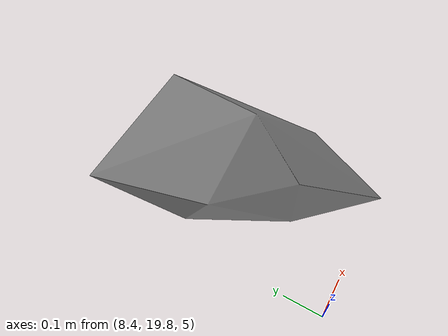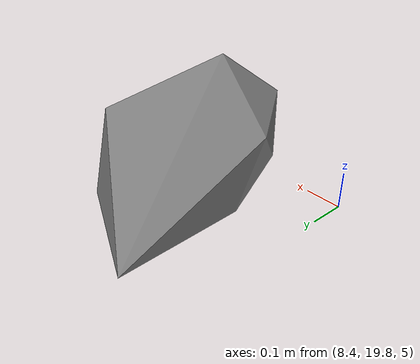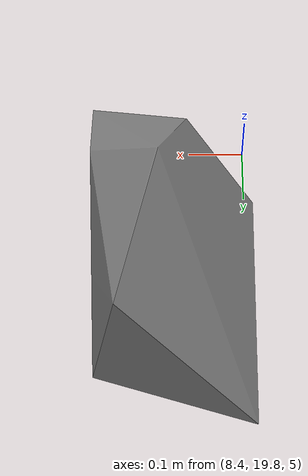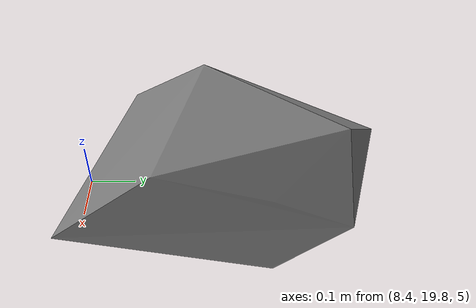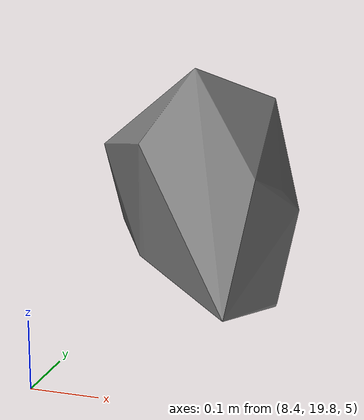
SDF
<sdf version="1.8">
 <model name="blue_mountains">
  <static>true</static>
  <link name="forest_20_22">
   <collision name="plant_473_crown_0">
    <pose>8.677761 20.08138 4.618894 0 0 0</pose>
    <geometry>
     <mesh>
      <uri>model://blue_mountains/meshes/canopy_12_0.dae</uri>
      <scale>0.07575656 0.07575656 0.06926315</scale>
     </mesh>
    </geometry>
   </collision>
   <collision name="plant_473_crown_1">
    <pose>8.677761 20.08138 4.618894 0 0 0</pose>
    <geometry>
     <mesh>
      <uri>model://blue_mountains/meshes/canopy_12_1.dae</uri>
      <scale>0.07575656 0.07575656 0.06926315</scale>
     </mesh>
    </geometry>
   </collision>
   <collision name="plant_480_crown_0">
    <pose>5.153961 22.28396 4.654346 0 0 0</pose>
    <geometry>
     <mesh>
      <uri>model://blue_mountains/meshes/canopy_12_0.dae</uri>
      <scale>0.07575656 0.07575656 0.06926315</scale>
     </mesh>
    </geometry>
   </collision>
   <collision name="plant_480_crown_1">
    <pose>5.153961 22.28396 4.654346 0 0 0</pose>
    <geometry>
     <mesh>
      <uri>model://blue_mountains/meshes/canopy_12_1.dae</uri>
      <scale>0.07575656 0.07575656 0.06926315</scale>
     </mesh>
    </geometry>
   </collision>
   <collision name="plant_483_crown_0">
    <pose>0.6186609 25.23604 4.730132 0 0 0</pose>
    <geometry>
     <mesh>
      <uri>model://blue_mountains/meshes/canopy_16_0.dae</uri>
      <scale>0.07575656 0.07575656 0.06926315</scale>
     </mesh>
    </geometry>
   </collision>
   <collision name="plant_483_crown_1">
    <pose>0.6186609 25.23604 4.730132 0 0 0</pose>
    <geometry>
     <mesh>
      <uri>model://blue_mountains/meshes/canopy_16_1.dae</uri>
      <scale>0.07575656 0.07575656 0.06926315</scale>
     </mesh>
    </geometry>
   </collision>
   <collision name="plant_493_crown_0">
    <pose>6.862761 21.35329 4.730821 0 0 0</pose>
    <geometry>
     <mesh>
      <uri>model://blue_mountains/meshes/canopy_9_0.dae</uri>
      <scale>0.07575656 0.07575656 0.06926315</scale>
     </mesh>
    </geometry>
   </collision>
   <collision name="plant_493_crown_1">
    <pose>6.862761 21.35329 4.730821 0 0 0</pose>
    <geometry>
     <mesh>
      <uri>model://blue_mountains/meshes/canopy_9_1.dae</uri>
      <scale>0.07575656 0.07575656 0.06926315</scale>
     </mesh>
    </geometry>
   </collision>
   <collision name="plant_502_crown_0">
    <pose>0.7462606 24.05902 4.324142 0 0 0</pose>
    <geometry>
     <mesh>
      <uri>model://blue_mountains/meshes/canopy_9_0.dae</uri>
      <scale>0.07575656 0.07575656 0.06926315</scale>
     </mesh>
    </geometry>
   </collision>
   <collision name="plant_502_crown_1">
    <pose>0.7462606 24.05902 4.324142 0 0 0</pose>
    <geometry>
     <mesh>
      <uri>model://blue_mountains/meshes/canopy_9_1.dae</uri>
      <scale>0.07575656 0.07575656 0.06926315</scale>
     </mesh>
    </geometry>
   </collision>
   <collision name="plant_507_crown_0">
    <pose>0.5712376 25.29644 4.743216 0 0 0</pose>
    <geometry>
     <mesh>
      <uri>model://blue_mountains/meshes/canopy_16_0.dae</uri>
      <scale>0.07575656 0.07575656 0.06926315</scale>
     </mesh>
    </geometry>
   </collision>
   <collision name="plant_507_crown_1">
    <pose>0.5712376 25.29644 4.743216 0 0 0</pose>
    <geometry>
     <mesh>
      <uri>model://blue_mountains/meshes/canopy_16_1.dae</uri>
      <scale>0.07575656 0.07575656 0.06926315</scale>
     </mesh>
    </geometry>
   </collision>
   <collision name="plant_522_crown_0">
    <pose>5.081226 21.8291 4.464569 0 0 0</pose>
    <geometry>
     <mesh>
      <uri>model://blue_mountains/meshes/canopy_17_0.dae</uri>
      <scale>0.07575656 0.07575656 0.06926315</scale>
     </mesh>
    </geometry>
   </collision>
   <collision name="plant_522_crown_1">
    <pose>5.081226 21.8291 4.464569 0 0 0</pose>
    <geometry>
     <mesh>
      <uri>model://blue_mountains/meshes/canopy_17_1.dae</uri>
      <scale>0.07575656 0.07575656 0.06926315</scale>
     </mesh>
    </geometry>
   </collision>
   <collision name="plant_530_crown_0">
    <pose>1.198085 25.64903 26.77705 0 0 2.047998</pose>
    <geometry>
     <mesh>
      <uri>model://blue_mountains/meshes/canopy_9_0.dae</uri>
      <scale>0.05570151 0.05570151 0.04010509</scale>
     </mesh>
    </geometry>
   </collision>
   <collision name="plant_530_crown_1">
    <pose>1.198085 25.64903 26.77705 0 0 2.047998</pose>
    <geometry>
     <mesh>
      <uri>model://blue_mountains/meshes/canopy_9_1.dae</uri>
      <scale>0.05570151 0.05570151 0.04010509</scale>
     </mesh>
    </geometry>
   </collision>
   <collision name="plant_531_crown_0">
    <pose>1.044952 24.8511 26.77705 0 0 1.608684</pose>
    <geometry>
     <mesh>
      <uri>model://blue_mountains/meshes/canopy_10_0.dae</uri>
      <scale>0.05567531 0.05567531 0.04008622</scale>
     </mesh>
    </geometry>
   </collision>
   <collision name="plant_531_crown_1">
    <pose>1.044952 24.8511 26.77705 0 0 1.608684</pose>
    <geometry>
     <mesh>
      <uri>model://blue_mountains/meshes/canopy_10_1.dae</uri>
      <scale>0.05567531 0.05567531 0.04008622</scale>
     </mesh>
    </geometry>
   </collision>
   <collision name="plant_532_crown_0">
    <pose>3.755941 23.99877 26.77705 0 0 2.079899</pose>
    <geometry>
     <mesh>
      <uri>model://blue_mountains/meshes/canopy_11_0.dae</uri>
      <scale>0.03209214 0.03209214 0.02310634</scale>
     </mesh>
    </geometry>
   </collision>
   <collision name="plant_532_crown_1">
    <pose>3.755941 23.99877 26.77705 0 0 2.079899</pose>
    <geometry>
     <mesh>
      <uri>model://blue_mountains/meshes/canopy_11_1.dae</uri>
      <scale>0.03209214 0.03209214 0.02310634</scale>
     </mesh>
    </geometry>
   </collision>
   <collision name="plant_533_crown_0">
    <pose>3.64604 25.17569 26.77705 0 0 -0.05939228</pose>
    <geometry>
     <mesh>
      <uri>model://blue_mountains/meshes/canopy_12_0.dae</uri>
      <scale>0.06605312 0.06605312 0.04755824</scale>
     </mesh>
    </geometry>
   </collision>
   <collision name="plant_533_crown_1">
    <pose>3.64604 25.17569 26.77705 0 0 -0.05939228</pose>
    <geometry>
     <mesh>
      <uri>model://blue_mountains/meshes/canopy_12_1.dae</uri>
      <scale>0.06605312 0.06605312 0.04755824</scale>
     </mesh>
    </geometry>
   </collision>
   <collision name="plant_534_crown_0">
    <pose>3.41852 24.96568 26.77705 0 0 -0.2101829</pose>
    <geometry>
     <mesh>
      <uri>model://blue_mountains/meshes/canopy_13_0.dae</uri>
      <scale>0.03858489 0.03858489 0.02778112</scale>
     </mesh>
    </geometry>
   </collision>
   <collision name="plant_534_crown_1">
    <pose>3.41852 24.96568 26.77705 0 0 -0.2101829</pose>
    <geometry>
     <mesh>
      <uri>model://blue_mountains/meshes/canopy_13_1.dae</uri>
      <scale>0.03858489 0.03858489 0.02778112</scale>
     </mesh>
    </geometry>
   </collision>
   <collision name="plant_535_crown_0">
    <pose>1.892339 23.65535 26.77705 0 0 1.235786</pose>
    <geometry>
     <mesh>
      <uri>model://blue_mountains/meshes/canopy_14_0.dae</uri>
      <scale>0.05013996 0.05013996 0.03610077</scale>
     </mesh>
    </geometry>
   </collision>
   <collision name="plant_535_crown_1">
    <pose>1.892339 23.65535 26.77705 0 0 1.235786</pose>
    <geometry>
     <mesh>
      <uri>model://blue_mountains/meshes/canopy_14_1.dae</uri>
      <scale>0.05013996 0.05013996 0.03610077</scale>
     </mesh>
    </geometry>
   </collision>
   <collision name="plant_536_crown_0">
    <pose>2.340251 26.52953 26.77705 0 0 -1.296142</pose>
    <geometry>
     <mesh>
      <uri>model://blue_mountains/meshes/canopy_16_0.dae</uri>
      <scale>0.04668742 0.04668742 0.03361494</scale>
     </mesh>
    </geometry>
   </collision>
   <collision name="plant_536_crown_1">
    <pose>2.340251 26.52953 26.77705 0 0 -1.296142</pose>
    <geometry>
     <mesh>
      <uri>model://blue_mountains/meshes/canopy_16_1.dae</uri>
      <scale>0.04668742 0.04668742 0.03361494</scale>
     </mesh>
    </geometry>
   </collision>
   <collision name="plant_537_crown_0">
    <pose>2.623847 25.23013 26.77705 0 0 -1.394095</pose>
    <geometry>
     <mesh>
      <uri>model://blue_mountains/meshes/canopy_17_0.dae</uri>
      <scale>0.03877625 0.03877625 0.0279189</scale>
     </mesh>
    </geometry>
   </collision>
   <collision name="plant_537_crown_1">
    <pose>2.623847 25.23013 26.77705 0 0 -1.394095</pose>
    <geometry>
     <mesh>
      <uri>model://blue_mountains/meshes/canopy_17_1.dae</uri>
      <scale>0.03877625 0.03877625 0.0279189</scale>
     </mesh>
    </geometry>
   </collision>
   <collision name="plant_538_crown_0">
    <pose>2.767093 23.875 26.77705 0 0 -2.401805</pose>
    <geometry>
     <mesh>
      <uri>model://blue_mountains/meshes/canopy_15_0.dae</uri>
      <scale>0.04078904 0.04078904 0.02936811</scale>
     </mesh>
    </geometry>
   </collision>
   <collision name="plant_538_crown_1">
    <pose>2.767093 23.875 26.77705 0 0 -2.401805</pose>
    <geometry>
     <mesh>
      <uri>model://blue_mountains/meshes/canopy_15_1.dae</uri>
      <scale>0.04078904 0.04078904 0.02936811</scale>
     </mesh>
    </geometry>
   </collision>
   <collision name="plant_539_crown_0">
    <pose>3.784349 25.03315 26.77705 0 0 -0.4079178</pose>
    <geometry>
     <mesh>
      <uri>model://blue_mountains/meshes/canopy_9_0.dae</uri>
      <scale>0.03891067 0.03891067 0.02801568</scale>
     </mesh>
    </geometry>
   </collision>
   <collision name="plant_539_crown_1">
    <pose>3.784349 25.03315 26.77705 0 0 -0.4079178</pose>
    <geometry>
     <mesh>
      <uri>model://blue_mountains/meshes/canopy_9_1.dae</uri>
      <scale>0.03891067 0.03891067 0.02801568</scale>
     </mesh>
    </geometry>
   </collision>
   <collision name="plant_540_crown_0">
    <pose>2.105189 25.4656 26.77705 0 0 1.887536</pose>
    <geometry>
     <mesh>
      <uri>model://blue_mountains/meshes/canopy_10_0.dae</uri>
      <scale>0.04342087 0.04342087 0.03126303</scale>
     </mesh>
    </geometry>
   </collision>
   <collision name="plant_540_crown_1">
    <pose>2.105189 25.4656 26.77705 0 0 1.887536</pose>
    <geometry>
     <mesh>
      <uri>model://blue_mountains/meshes/canopy_10_1.dae</uri>
      <scale>0.04342087 0.04342087 0.03126303</scale>
     </mesh>
    </geometry>
   </collision>
   <collision name="plant_541_crown_0">
    <pose>0.2119408 22.88078 26.77705 0 0 -1.263834</pose>
    <geometry>
     <mesh>
      <uri>model://blue_mountains/meshes/canopy_11_0.dae</uri>
      <scale>0.03830105 0.03830105 0.02757676</scale>
     </mesh>
    </geometry>
   </collision>
   <collision name="plant_541_crown_1">
    <pose>0.2119408 22.88078 26.77705 0 0 -1.263834</pose>
    <geometry>
     <mesh>
      <uri>model://blue_mountains/meshes/canopy_11_1.dae</uri>
      <scale>0.03830105 0.03830105 0.02757676</scale>
     </mesh>
    </geometry>
   </collision>
   <collision name="plant_542_crown_0">
    <pose>3.176075 23.94971 26.77705 0 0 -2.032307</pose>
    <geometry>
     <mesh>
      <uri>model://blue_mountains/meshes/canopy_12_0.dae</uri>
      <scale>0.03841555 0.03841555 0.02765919</scale>
     </mesh>
    </geometry>
   </collision>
   <collision name="plant_542_crown_1">
    <pose>3.176075 23.94971 26.77705 0 0 -2.032307</pose>
    <geometry>
     <mesh>
      <uri>model://blue_mountains/meshes/canopy_12_1.dae</uri>
      <scale>0.03841555 0.03841555 0.02765919</scale>
     </mesh>
    </geometry>
   </collision>
   <collision name="plant_543_crown_0">
    <pose>2.067636 25.33515 26.77705 0 0 0.7596634</pose>
    <geometry>
     <mesh>
      <uri>model://blue_mountains/meshes/canopy_13_0.dae</uri>
      <scale>0.06016881 0.06016881 0.04332155</scale>
     </mesh>
    </geometry>
   </collision>
   <collision name="plant_543_crown_1">
    <pose>2.067636 25.33515 26.77705 0 0 0.7596634</pose>
    <geometry>
     <mesh>
      <uri>model://blue_mountains/meshes/canopy_13_1.dae</uri>
      <scale>0.06016881 0.06016881 0.04332155</scale>
     </mesh>
    </geometry>
   </collision>
   <collision name="plant_544_crown_0">
    <pose>3.292474 23.40518 26.77705 0 0 -2.64013</pose>
    <geometry>
     <mesh>
      <uri>model://blue_mountains/meshes/canopy_14_0.dae</uri>
      <scale>0.03662495 0.03662495 0.02636996</scale>
     </mesh>
    </geometry>
   </collision>
   <collision name="plant_544_crown_1">
    <pose>3.292474 23.40518 26.77705 0 0 -2.64013</pose>
    <geometry>
     <mesh>
      <uri>model://blue_mountains/meshes/canopy_14_1.dae</uri>
      <scale>0.03662495 0.03662495 0.02636996</scale>
     </mesh>
    </geometry>
   </collision>
   <collision name="plant_545_crown_0">
    <pose>2.259783 26.05717 26.77705 0 0 -2.490295</pose>
    <geometry>
     <mesh>
      <uri>model://blue_mountains/meshes/canopy_16_0.dae</uri>
      <scale>0.04453435 0.04453435 0.03206473</scale>
     </mesh>
    </geometry>
   </collision>
   <collision name="plant_545_crown_1">
    <pose>2.259783 26.05717 26.77705 0 0 -2.490295</pose>
    <geometry>
     <mesh>
      <uri>model://blue_mountains/meshes/canopy_16_1.dae</uri>
      <scale>0.04453435 0.04453435 0.03206473</scale>
     </mesh>
    </geometry>
   </collision>
   <collision name="plant_546_crown_0">
    <pose>2.919366 24.4645 26.77705 0 0 -2.809561</pose>
    <geometry>
     <mesh>
      <uri>model://blue_mountains/meshes/canopy_17_0.dae</uri>
      <scale>0.03103218 0.03103218 0.02234317</scale>
     </mesh>
    </geometry>
   </collision>
   <collision name="plant_546_crown_1">
    <pose>2.919366 24.4645 26.77705 0 0 -2.809561</pose>
    <geometry>
     <mesh>
      <uri>model://blue_mountains/meshes/canopy_17_1.dae</uri>
      <scale>0.03103218 0.03103218 0.02234317</scale>
     </mesh>
    </geometry>
   </collision>
   <collision name="plant_547_crown_0">
    <pose>0.2766027 22.92285 26.77705 0 0 -1.40135</pose>
    <geometry>
     <mesh>
      <uri>model://blue_mountains/meshes/canopy_15_0.dae</uri>
      <scale>0.04896622 0.04896622 0.03525568</scale>
     </mesh>
    </geometry>
   </collision>
   <collision name="plant_547_crown_1">
    <pose>0.2766027 22.92285 26.77705 0 0 -1.40135</pose>
    <geometry>
     <mesh>
      <uri>model://blue_mountains/meshes/canopy_15_1.dae</uri>
      <scale>0.04896622 0.04896622 0.03525568</scale>
     </mesh>
    </geometry>
   </collision>
   <collision name="plant_548_crown_0">
    <pose>1.425838 26.47417 26.77705 0 0 2.083898</pose>
    <geometry>
     <mesh>
      <uri>model://blue_mountains/meshes/canopy_9_0.dae</uri>
      <scale>0.05690488 0.05690488 0.04097151</scale>
     </mesh>
    </geometry>
   </collision>
   <collision name="plant_548_crown_1">
    <pose>1.425838 26.47417 26.77705 0 0 2.083898</pose>
    <geometry>
     <mesh>
      <uri>model://blue_mountains/meshes/canopy_9_1.dae</uri>
      <scale>0.05690488 0.05690488 0.04097151</scale>
     </mesh>
    </geometry>
   </collision>
   <collision name="plant_549_crown_0">
    <pose>2.022517 25.58707 26.77705 0 0 -1.503879</pose>
    <geometry>
     <mesh>
      <uri>model://blue_mountains/meshes/canopy_10_0.dae</uri>
      <scale>0.04376206 0.04376206 0.03150868</scale>
     </mesh>
    </geometry>
   </collision>
   <collision name="plant_549_crown_1">
    <pose>2.022517 25.58707 26.77705 0 0 -1.503879</pose>
    <geometry>
     <mesh>
      <uri>model://blue_mountains/meshes/canopy_10_1.dae</uri>
      <scale>0.04376206 0.04376206 0.03150868</scale>
     </mesh>
    </geometry>
   </collision>
   <collision name="plant_550_crown_0">
    <pose>0.1847324 25.54053 26.77705 0 0 -1.725963</pose>
    <geometry>
     <mesh>
      <uri>model://blue_mountains/meshes/canopy_11_0.dae</uri>
      <scale>0.0495435 0.0495435 0.03567132</scale>
     </mesh>
    </geometry>
   </collision>
   <collision name="plant_550_crown_1">
    <pose>0.1847324 25.54053 26.77705 0 0 -1.725963</pose>
    <geometry>
     <mesh>
      <uri>model://blue_mountains/meshes/canopy_11_1.dae</uri>
      <scale>0.0495435 0.0495435 0.03567132</scale>
     </mesh>
    </geometry>
   </collision>
   <collision name="plant_551_crown_0">
    <pose>0.8605232 24.89202 26.77705 0 0 -3.124573</pose>
    <geometry>
     <mesh>
      <uri>model://blue_mountains/meshes/canopy_12_0.dae</uri>
      <scale>0.06674428 0.06674428 0.04805588</scale>
     </mesh>
    </geometry>
   </collision>
   <collision name="plant_551_crown_1">
    <pose>0.8605232 24.89202 26.77705 0 0 -3.124573</pose>
    <geometry>
     <mesh>
      <uri>model://blue_mountains/meshes/canopy_12_1.dae</uri>
      <scale>0.06674428 0.06674428 0.04805588</scale>
     </mesh>
    </geometry>
   </collision>
   <collision name="plant_552_crown_0">
    <pose>1.131092 26.21499 26.77705 0 0 -1.063129</pose>
    <geometry>
     <mesh>
      <uri>model://blue_mountains/meshes/canopy_13_0.dae</uri>
      <scale>0.05597425 0.05597425 0.04030146</scale>
     </mesh>
    </geometry>
   </collision>
   <collision name="plant_552_crown_1">
    <pose>1.131092 26.21499 26.77705 0 0 -1.063129</pose>
    <geometry>
     <mesh>
      <uri>model://blue_mountains/meshes/canopy_13_1.dae</uri>
      <scale>0.05597425 0.05597425 0.04030146</scale>
     </mesh>
    </geometry>
   </collision>
   <collision name="plant_553_crown_0">
    <pose>0.5346384 24.61217 26.77705 0 0 1.893352</pose>
    <geometry>
     <mesh>
      <uri>model://blue_mountains/meshes/canopy_14_0.dae</uri>
      <scale>0.05109373 0.05109373 0.03678748</scale>
     </mesh>
    </geometry>
   </collision>
   <collision name="plant_553_crown_1">
    <pose>0.5346384 24.61217 26.77705 0 0 1.893352</pose>
    <geometry>
     <mesh>
      <uri>model://blue_mountains/meshes/canopy_14_1.dae</uri>
      <scale>0.05109373 0.05109373 0.03678748</scale>
     </mesh>
    </geometry>
   </collision>
   <collision name="plant_554_crown_0">
    <pose>3.155102 25.87243 26.77705 0 0 2.427433</pose>
    <geometry>
     <mesh>
      <uri>model://blue_mountains/meshes/canopy_16_0.dae</uri>
      <scale>0.03640895 0.03640895 0.02621444</scale>
     </mesh>
    </geometry>
   </collision>
   <collision name="plant_554_crown_1">
    <pose>3.155102 25.87243 26.77705 0 0 2.427433</pose>
    <geometry>
     <mesh>
      <uri>model://blue_mountains/meshes/canopy_16_1.dae</uri>
      <scale>0.03640895 0.03640895 0.02621444</scale>
     </mesh>
    </geometry>
   </collision>
   <collision name="plant_555_crown_0">
    <pose>0.1452732 23.05852 26.77705 0 0 1.617626</pose>
    <geometry>
     <mesh>
      <uri>model://blue_mountains/meshes/canopy_17_0.dae</uri>
      <scale>0.05587987 0.05587987 0.04023351</scale>
     </mesh>
    </geometry>
   </collision>
   <collision name="plant_555_crown_1">
    <pose>0.1452732 23.05852 26.77705 0 0 1.617626</pose>
    <geometry>
     <mesh>
      <uri>model://blue_mountains/meshes/canopy_17_1.dae</uri>
      <scale>0.05587987 0.05587987 0.04023351</scale>
     </mesh>
    </geometry>
   </collision>
   <collision name="plant_556_crown_0">
    <pose>3.697051 25.70386 26.77705 0 0 -1.943493</pose>
    <geometry>
     <mesh>
      <uri>model://blue_mountains/meshes/canopy_15_0.dae</uri>
      <scale>0.05215465 0.05215465 0.03755135</scale>
     </mesh>
    </geometry>
   </collision>
   <collision name="plant_556_crown_1">
    <pose>3.697051 25.70386 26.77705 0 0 -1.943493</pose>
    <geometry>
     <mesh>
      <uri>model://blue_mountains/meshes/canopy_15_1.dae</uri>
      <scale>0.05215465 0.05215465 0.03755135</scale>
     </mesh>
    </geometry>
   </collision>
   <collision name="plant_557_crown_0">
    <pose>0.7544641 23.90619 26.77705 0 0 0.5056376</pose>
    <geometry>
     <mesh>
      <uri>model://blue_mountains/meshes/canopy_9_0.dae</uri>
      <scale>0.04095233 0.04095233 0.02948568</scale>
     </mesh>
    </geometry>
   </collision>
   <collision name="plant_557_crown_1">
    <pose>0.7544641 23.90619 26.77705 0 0 0.5056376</pose>
    <geometry>
     <mesh>
      <uri>model://blue_mountains/meshes/canopy_9_1.dae</uri>
      <scale>0.04095233 0.04095233 0.02948568</scale>
     </mesh>
    </geometry>
   </collision>
   <collision name="plant_558_crown_0">
    <pose>1.955627 25.25524 26.77705 0 0 -0.7298977</pose>
    <geometry>
     <mesh>
      <uri>model://blue_mountains/meshes/canopy_10_0.dae</uri>
      <scale>0.0503149 0.0503149 0.03622673</scale>
     </mesh>
    </geometry>
   </collision>
   <collision name="plant_558_crown_1">
    <pose>1.955627 25.25524 26.77705 0 0 -0.7298977</pose>
    <geometry>
     <mesh>
      <uri>model://blue_mountains/meshes/canopy_10_1.dae</uri>
      <scale>0.0503149 0.0503149 0.03622673</scale>
     </mesh>
    </geometry>
   </collision>
   <collision name="plant_559_crown_0">
    <pose>3.343706 25.23955 26.77705 0 0 -2.631783</pose>
    <geometry>
     <mesh>
      <uri>model://blue_mountains/meshes/canopy_11_0.dae</uri>
      <scale>0.0323243 0.0323243 0.02327349</scale>
     </mesh>
    </geometry>
   </collision>
   <collision name="plant_559_crown_1">
    <pose>3.343706 25.23955 26.77705 0 0 -2.631783</pose>
    <geometry>
     <mesh>
      <uri>model://blue_mountains/meshes/canopy_11_1.dae</uri>
      <scale>0.0323243 0.0323243 0.02327349</scale>
     </mesh>
    </geometry>
   </collision>
   <collision name="plant_560_crown_0">
    <pose>1.46683 23.65966 26.77705 0 0 -0.8614276</pose>
    <geometry>
     <mesh>
      <uri>model://blue_mountains/meshes/canopy_12_0.dae</uri>
      <scale>0.05493695 0.05493695 0.03955461</scale>
     </mesh>
    </geometry>
   </collision>
   <collision name="plant_560_crown_1">
    <pose>1.46683 23.65966 26.77705 0 0 -0.8614276</pose>
    <geometry>
     <mesh>
      <uri>model://blue_mountains/meshes/canopy_12_1.dae</uri>
      <scale>0.05493695 0.05493695 0.03955461</scale>
     </mesh>
    </geometry>
   </collision>
   <collision name="plant_561_crown_0">
    <pose>1.223083 24.78657 26.77705 0 0 0.5088393</pose>
    <geometry>
     <mesh>
      <uri>model://blue_mountains/meshes/canopy_13_0.dae</uri>
      <scale>0.06677686 0.06677686 0.04807934</scale>
     </mesh>
    </geometry>
   </collision>
   <collision name="plant_561_crown_1">
    <pose>1.223083 24.78657 26.77705 0 0 0.5088393</pose>
    <geometry>
     <mesh>
      <uri>model://blue_mountains/meshes/canopy_13_1.dae</uri>
      <scale>0.06677686 0.06677686 0.04807934</scale>
     </mesh>
    </geometry>
   </collision>
   <collision name="plant_562_crown_0">
    <pose>0.4813452 26.27377 26.77705 0 0 -0.783541</pose>
    <geometry>
     <mesh>
      <uri>model://blue_mountains/meshes/canopy_14_0.dae</uri>
      <scale>0.06227544 0.06227544 0.04483831</scale>
     </mesh>
    </geometry>
   </collision>
   <collision name="plant_562_crown_1">
    <pose>0.4813452 26.27377 26.77705 0 0 -0.783541</pose>
    <geometry>
     <mesh>
      <uri>model://blue_mountains/meshes/canopy_14_1.dae</uri>
      <scale>0.06227544 0.06227544 0.04483831</scale>
     </mesh>
    </geometry>
   </collision>
   <collision name="plant_563_crown_0">
    <pose>1.096311 25.85804 26.77705 0 0 -2.159941</pose>
    <geometry>
     <mesh>
      <uri>model://blue_mountains/meshes/canopy_16_0.dae</uri>
      <scale>0.04505201 0.04505201 0.03243745</scale>
     </mesh>
    </geometry>
   </collision>
   <collision name="plant_563_crown_1">
    <pose>1.096311 25.85804 26.77705 0 0 -2.159941</pose>
    <geometry>
     <mesh>
      <uri>model://blue_mountains/meshes/canopy_16_1.dae</uri>
      <scale>0.04505201 0.04505201 0.03243745</scale>
     </mesh>
    </geometry>
   </collision>
   <collision name="plant_564_crown_0">
    <pose>2.931278 23.48528 26.77705 0 0 0.07563229</pose>
    <geometry>
     <mesh>
      <uri>model://blue_mountains/meshes/canopy_17_0.dae</uri>
      <scale>0.04803754 0.04803754 0.03458703</scale>
     </mesh>
    </geometry>
   </collision>
   <collision name="plant_564_crown_1">
    <pose>2.931278 23.48528 26.77705 0 0 0.07563229</pose>
    <geometry>
     <mesh>
      <uri>model://blue_mountains/meshes/canopy_17_1.dae</uri>
      <scale>0.04803754 0.04803754 0.03458703</scale>
     </mesh>
    </geometry>
   </collision>
   <collision name="plant_567_crown_0">
    <pose>5.218371 20.70687 15.95469 0 0 -1.873321</pose>
    <geometry>
     <mesh>
      <uri>model://blue_mountains/meshes/canopy_10_0.dae</uri>
      <scale>0.04852451 0.04852451 0.03493765</scale>
     </mesh>
    </geometry>
   </collision>
   <collision name="plant_567_crown_1">
    <pose>5.218371 20.70687 15.95469 0 0 -1.873321</pose>
    <geometry>
     <mesh>
      <uri>model://blue_mountains/meshes/canopy_10_1.dae</uri>
      <scale>0.04852451 0.04852451 0.03493765</scale>
     </mesh>
    </geometry>
   </collision>
   <collision name="plant_568_crown_0">
    <pose>6.383032 24.1776 23.74679 0 0 0.04615553</pose>
    <geometry>
     <mesh>
      <uri>model://blue_mountains/meshes/canopy_11_0.dae</uri>
      <scale>0.03527452 0.03527452 0.02539765</scale>
     </mesh>
    </geometry>
   </collision>
   <collision name="plant_568_crown_1">
    <pose>6.383032 24.1776 23.74679 0 0 0.04615553</pose>
    <geometry>
     <mesh>
      <uri>model://blue_mountains/meshes/canopy_11_1.dae</uri>
      <scale>0.03527452 0.03527452 0.02539765</scale>
     </mesh>
    </geometry>
   </collision>
   <collision name="plant_569_crown_0">
    <pose>6.789952 23.7512 18.7685 0 0 1.149171</pose>
    <geometry>
     <mesh>
      <uri>model://blue_mountains/meshes/canopy_12_0.dae</uri>
      <scale>0.03927777 0.03927777 0.02828</scale>
     </mesh>
    </geometry>
   </collision>
   <collision name="plant_569_crown_1">
    <pose>6.789952 23.7512 18.7685 0 0 1.149171</pose>
    <geometry>
     <mesh>
      <uri>model://blue_mountains/meshes/canopy_12_1.dae</uri>
      <scale>0.03927777 0.03927777 0.02828</scale>
     </mesh>
    </geometry>
   </collision>
   <collision name="plant_570_crown_0">
    <pose>3.919687 20.70687 21.58232 0 0 -0.4937628</pose>
    <geometry>
     <mesh>
      <uri>model://blue_mountains/meshes/canopy_13_0.dae</uri>
      <scale>0.05242193 0.05242193 0.03774379</scale>
     </mesh>
    </geometry>
   </collision>
   <collision name="plant_570_crown_1">
    <pose>3.919687 20.70687 21.58232 0 0 -0.4937628</pose>
    <geometry>
     <mesh>
      <uri>model://blue_mountains/meshes/canopy_13_1.dae</uri>
      <scale>0.05242193 0.05242193 0.03774379</scale>
     </mesh>
    </geometry>
   </collision>
   <collision name="plant_571_crown_0">
    <pose>3.896788 21.49019 22.4481 0 0 -1.841495</pose>
    <geometry>
     <mesh>
      <uri>model://blue_mountains/meshes/canopy_14_0.dae</uri>
      <scale>0.05193698 0.05193698 0.03739463</scale>
     </mesh>
    </geometry>
   </collision>
   <collision name="plant_571_crown_1">
    <pose>3.896788 21.49019 22.4481 0 0 -1.841495</pose>
    <geometry>
     <mesh>
      <uri>model://blue_mountains/meshes/canopy_14_1.dae</uri>
      <scale>0.05193698 0.05193698 0.03739463</scale>
     </mesh>
    </geometry>
   </collision>
   <collision name="plant_573_crown_0">
    <pose>6.370045 24.13561 22.4481 0 0 -1.214486</pose>
    <geometry>
     <mesh>
      <uri>model://blue_mountains/meshes/canopy_17_0.dae</uri>
      <scale>0.05079237 0.05079237 0.03657051</scale>
     </mesh>
    </geometry>
   </collision>
   <collision name="plant_573_crown_1">
    <pose>6.370045 24.13561 22.4481 0 0 -1.214486</pose>
    <geometry>
     <mesh>
      <uri>model://blue_mountains/meshes/canopy_17_1.dae</uri>
      <scale>0.05079237 0.05079237 0.03657051</scale>
     </mesh>
    </geometry>
   </collision>
   <collision name="plant_574_crown_0">
    <pose>4.144533 29.29398 18.7685 0 0 -1.483319</pose>
    <geometry>
     <mesh>
      <uri>model://blue_mountains/meshes/canopy_15_0.dae</uri>
      <scale>0.03868147 0.03868147 0.02785066</scale>
     </mesh>
    </geometry>
   </collision>
   <collision name="plant_574_crown_1">
    <pose>4.144533 29.29398 18.7685 0 0 -1.483319</pose>
    <geometry>
     <mesh>
      <uri>model://blue_mountains/meshes/canopy_15_1.dae</uri>
      <scale>0.03868147 0.03868147 0.02785066</scale>
     </mesh>
    </geometry>
   </collision>
   <collision name="plant_575_crown_0">
    <pose>7.019386 23.83518 17.90271 0 0 -1.993925</pose>
    <geometry>
     <mesh>
      <uri>model://blue_mountains/meshes/canopy_9_0.dae</uri>
      <scale>0.06683843 0.06683843 0.04812367</scale>
     </mesh>
    </geometry>
   </collision>
   <collision name="plant_575_crown_1">
    <pose>7.019386 23.83518 17.90271 0 0 -1.993925</pose>
    <geometry>
     <mesh>
      <uri>model://blue_mountains/meshes/canopy_9_1.dae</uri>
      <scale>0.06683843 0.06683843 0.04812367</scale>
     </mesh>
    </geometry>
   </collision>
   <collision name="plant_576_crown_0">
    <pose>4.056353 20.51791 18.7685 0 0 -2.781163</pose>
    <geometry>
     <mesh>
      <uri>model://blue_mountains/meshes/canopy_10_0.dae</uri>
      <scale>0.04874476 0.04874476 0.03509622</scale>
     </mesh>
    </geometry>
   </collision>
   <collision name="plant_576_crown_1">
    <pose>4.056353 20.51791 18.7685 0 0 -2.781163</pose>
    <geometry>
     <mesh>
      <uri>model://blue_mountains/meshes/canopy_10_1.dae</uri>
      <scale>0.04874476 0.04874476 0.03509622</scale>
     </mesh>
    </geometry>
   </collision>
   <collision name="plant_578_crown_0">
    <pose>1.719566 20.05601 18.7685 0 0 -0.5409574</pose>
    <geometry>
     <mesh>
      <uri>model://blue_mountains/meshes/canopy_12_0.dae</uri>
      <scale>0.05601997 0.05601997 0.04033438</scale>
     </mesh>
    </geometry>
   </collision>
   <collision name="plant_578_crown_1">
    <pose>1.719566 20.05601 18.7685 0 0 -0.5409574</pose>
    <geometry>
     <mesh>
      <uri>model://blue_mountains/meshes/canopy_12_1.dae</uri>
      <scale>0.05601997 0.05601997 0.04033438</scale>
     </mesh>
    </geometry>
   </collision>
   <collision name="plant_580_crown_0">
    <pose>5.669188 22.40749 26.12771 0 0 0.5031929</pose>
    <geometry>
     <mesh>
      <uri>model://blue_mountains/meshes/canopy_14_0.dae</uri>
      <scale>0.0389599 0.0389599 0.02805113</scale>
     </mesh>
    </geometry>
   </collision>
   <collision name="plant_580_crown_1">
    <pose>5.669188 22.40749 26.12771 0 0 0.5031929</pose>
    <geometry>
     <mesh>
      <uri>model://blue_mountains/meshes/canopy_14_1.dae</uri>
      <scale>0.0389599 0.0389599 0.02805113</scale>
     </mesh>
    </geometry>
   </collision>
   <collision name="plant_581_crown_0">
    <pose>4.012067 29.08403 21.58232 0 0 1.714038</pose>
    <geometry>
     <mesh>
      <uri>model://blue_mountains/meshes/canopy_16_0.dae</uri>
      <scale>0.05843258 0.05843258 0.04207146</scale>
     </mesh>
    </geometry>
   </collision>
   <collision name="plant_581_crown_1">
    <pose>4.012067 29.08403 21.58232 0 0 1.714038</pose>
    <geometry>
     <mesh>
      <uri>model://blue_mountains/meshes/canopy_16_1.dae</uri>
      <scale>0.05843258 0.05843258 0.04207146</scale>
     </mesh>
    </geometry>
   </collision>
   <collision name="plant_582_crown_0">
    <pose>5.771676 22.17044 22.4481 0 0 -0.3749612</pose>
    <geometry>
     <mesh>
      <uri>model://blue_mountains/meshes/canopy_17_0.dae</uri>
      <scale>0.06881279 0.06881279 0.0495452</scale>
     </mesh>
    </geometry>
   </collision>
   <collision name="plant_582_crown_1">
    <pose>5.771676 22.17044 22.4481 0 0 -0.3749612</pose>
    <geometry>
     <mesh>
      <uri>model://blue_mountains/meshes/canopy_17_1.dae</uri>
      <scale>0.06881279 0.06881279 0.0495452</scale>
     </mesh>
    </geometry>
   </collision>
   <collision name="plant_583_crown_0">
    <pose>7.389295 21.50049 15.95469 0 0 1.867812</pose>
    <geometry>
     <mesh>
      <uri>model://blue_mountains/meshes/canopy_15_0.dae</uri>
      <scale>0.03314164 0.03314164 0.02386198</scale>
     </mesh>
    </geometry>
   </collision>
   <collision name="plant_583_crown_1">
    <pose>7.389295 21.50049 15.95469 0 0 1.867812</pose>
    <geometry>
     <mesh>
      <uri>model://blue_mountains/meshes/canopy_15_1.dae</uri>
      <scale>0.03314164 0.03314164 0.02386198</scale>
     </mesh>
    </geometry>
   </collision>
   <collision name="plant_584_crown_0">
    <pose>6.136802 27.49678 21.58232 0 0 1.681065</pose>
    <geometry>
     <mesh>
      <uri>model://blue_mountains/meshes/canopy_9_0.dae</uri>
      <scale>0.0352832 0.0352832 0.0254039</scale>
     </mesh>
    </geometry>
   </collision>
   <collision name="plant_584_crown_1">
    <pose>6.136802 27.49678 21.58232 0 0 1.681065</pose>
    <geometry>
     <mesh>
      <uri>model://blue_mountains/meshes/canopy_9_1.dae</uri>
      <scale>0.0352832 0.0352832 0.0254039</scale>
     </mesh>
    </geometry>
   </collision>
   <collision name="plant_585_crown_0">
    <pose>5.811567 27.31011 22.4481 0 0 3.011714</pose>
    <geometry>
     <mesh>
      <uri>model://blue_mountains/meshes/canopy_10_0.dae</uri>
      <scale>0.04276734 0.04276734 0.03079248</scale>
     </mesh>
    </geometry>
   </collision>
   <collision name="plant_585_crown_1">
    <pose>5.811567 27.31011 22.4481 0 0 3.011714</pose>
    <geometry>
     <mesh>
      <uri>model://blue_mountains/meshes/canopy_10_1.dae</uri>
      <scale>0.04276734 0.04276734 0.03079248</scale>
     </mesh>
    </geometry>
   </collision>
   <collision name="plant_587_crown_0">
    <pose>4.170117 21.67915 23.74679 0 0 -1.317951</pose>
    <geometry>
     <mesh>
      <uri>model://blue_mountains/meshes/canopy_12_0.dae</uri>
      <scale>0.03821231 0.03821231 0.02751287</scale>
     </mesh>
    </geometry>
   </collision>
   <collision name="plant_587_crown_1">
    <pose>4.170117 21.67915 23.74679 0 0 -1.317951</pose>
    <geometry>
     <mesh>
      <uri>model://blue_mountains/meshes/canopy_12_1.dae</uri>
      <scale>0.03821231 0.03821231 0.02751287</scale>
     </mesh>
    </geometry>
   </collision>
   <collision name="plant_588_crown_0">
    <pose>4.625913 28.87407 17.90271 0 0 0.989909</pose>
    <geometry>
     <mesh>
      <uri>model://blue_mountains/meshes/canopy_13_0.dae</uri>
      <scale>0.03667943 0.03667943 0.02640919</scale>
     </mesh>
    </geometry>
   </collision>
   <collision name="plant_588_crown_1">
    <pose>4.625913 28.87407 17.90271 0 0 0.989909</pose>
    <geometry>
     <mesh>
      <uri>model://blue_mountains/meshes/canopy_13_1.dae</uri>
      <scale>0.03667943 0.03667943 0.02640919</scale>
     </mesh>
    </geometry>
   </collision>
   <collision name="plant_589_crown_0">
    <pose>0.06551743 21.53638 23.74679 0 0 -2.682693</pose>
    <geometry>
     <mesh>
      <uri>model://blue_mountains/meshes/canopy_14_0.dae</uri>
      <scale>0.05849283 0.05849283 0.04211484</scale>
     </mesh>
    </geometry>
   </collision>
   <collision name="plant_589_crown_1">
    <pose>0.06551743 21.53638 23.74679 0 0 -2.682693</pose>
    <geometry>
     <mesh>
      <uri>model://blue_mountains/meshes/canopy_14_1.dae</uri>
      <scale>0.05849283 0.05849283 0.04211484</scale>
     </mesh>
    </geometry>
   </collision>
   <collision name="plant_590_crown_0">
    <pose>5.811567 27.31011 22.4481 0 0 -0.05966552</pose>
    <geometry>
     <mesh>
      <uri>model://blue_mountains/meshes/canopy_16_0.dae</uri>
      <scale>0.03497415 0.03497415 0.02518139</scale>
     </mesh>
    </geometry>
   </collision>
   <collision name="plant_590_crown_1">
    <pose>5.811567 27.31011 22.4481 0 0 -0.05966552</pose>
    <geometry>
     <mesh>
      <uri>model://blue_mountains/meshes/canopy_16_1.dae</uri>
      <scale>0.03497415 0.03497415 0.02518139</scale>
     </mesh>
    </geometry>
   </collision>
   <collision name="plant_591_crown_0">
    <pose>8.082143 23.79319 15.95469 0 0 -2.230004</pose>
    <geometry>
     <mesh>
      <uri>model://blue_mountains/meshes/canopy_17_0.dae</uri>
      <scale>0.05119327 0.05119327 0.03685916</scale>
     </mesh>
    </geometry>
   </collision>
   <collision name="plant_591_crown_1">
    <pose>8.082143 23.79319 15.95469 0 0 -2.230004</pose>
    <geometry>
     <mesh>
      <uri>model://blue_mountains/meshes/canopy_17_1.dae</uri>
      <scale>0.05119327 0.05119327 0.03685916</scale>
     </mesh>
    </geometry>
   </collision>
   <collision name="plant_593_crown_0">
    <pose>6.090611 21.50049 21.58232 0 0 2.419689</pose>
    <geometry>
     <mesh>
      <uri>model://blue_mountains/meshes/canopy_9_0.dae</uri>
      <scale>0.04227325 0.04227325 0.03043674</scale>
     </mesh>
    </geometry>
   </collision>
   <collision name="plant_593_crown_1">
    <pose>6.090611 21.50049 21.58232 0 0 2.419689</pose>
    <geometry>
     <mesh>
      <uri>model://blue_mountains/meshes/canopy_9_1.dae</uri>
      <scale>0.04227325 0.04227325 0.03043674</scale>
     </mesh>
    </geometry>
   </collision>
   <collision name="plant_595_crown_0">
    <pose>4.241502 28.46066 23.74679 0 0 1.611251</pose>
    <geometry>
     <mesh>
      <uri>model://blue_mountains/meshes/canopy_11_0.dae</uri>
      <scale>0.03814587 0.03814587 0.02746503</scale>
     </mesh>
    </geometry>
   </collision>
   <collision name="plant_595_crown_1">
    <pose>4.241502 28.46066 23.74679 0 0 1.611251</pose>
    <geometry>
     <mesh>
      <uri>model://blue_mountains/meshes/canopy_11_1.dae</uri>
      <scale>0.03814587 0.03814587 0.02746503</scale>
     </mesh>
    </geometry>
   </collision>
   <collision name="plant_597_crown_0">
    <pose>5.970396 20.32895 11.62574 0 0 1.585055</pose>
    <geometry>
     <mesh>
      <uri>model://blue_mountains/meshes/canopy_13_0.dae</uri>
      <scale>0.05520456 0.05520456 0.03974728</scale>
     </mesh>
    </geometry>
   </collision>
   <collision name="plant_597_crown_1">
    <pose>5.970396 20.32895 11.62574 0 0 1.585055</pose>
    <geometry>
     <mesh>
      <uri>model://blue_mountains/meshes/canopy_13_1.dae</uri>
      <scale>0.05520456 0.05520456 0.03974728</scale>
     </mesh>
    </geometry>
   </collision>
   <collision name="plant_598_crown_0">
    <pose>5.811567 27.31011 22.4481 0 0 2.546679</pose>
    <geometry>
     <mesh>
      <uri>model://blue_mountains/meshes/canopy_14_0.dae</uri>
      <scale>0.04970897 0.04970897 0.03579046</scale>
     </mesh>
    </geometry>
   </collision>
   <collision name="plant_598_crown_1">
    <pose>5.811567 27.31011 22.4481 0 0 2.546679</pose>
    <geometry>
     <mesh>
      <uri>model://blue_mountains/meshes/canopy_14_1.dae</uri>
      <scale>0.04970897 0.04970897 0.03579046</scale>
     </mesh>
    </geometry>
   </collision>
   <collision name="plant_600_crown_0">
    <pose>4.15752 27.8243 26.12771 0 0 -2.733911</pose>
    <geometry>
     <mesh>
      <uri>model://blue_mountains/meshes/canopy_17_0.dae</uri>
      <scale>0.03938265 0.03938265 0.02835551</scale>
     </mesh>
    </geometry>
   </collision>
   <collision name="plant_600_crown_1">
    <pose>4.15752 27.8243 26.12771 0 0 -2.733911</pose>
    <geometry>
     <mesh>
      <uri>model://blue_mountains/meshes/canopy_17_1.dae</uri>
      <scale>0.03938265 0.03938265 0.02835551</scale>
     </mesh>
    </geometry>
   </collision>
   <collision name="plant_601_crown_0">
    <pose>6.783459 23.79319 21.58232 0 0 2.659688</pose>
    <geometry>
     <mesh>
      <uri>model://blue_mountains/meshes/canopy_15_0.dae</uri>
      <scale>0.0317114 0.0317114 0.02283221</scale>
     </mesh>
    </geometry>
   </collision>
   <collision name="plant_601_crown_1">
    <pose>6.783459 23.79319 21.58232 0 0 2.659688</pose>
    <geometry>
     <mesh>
      <uri>model://blue_mountains/meshes/canopy_15_1.dae</uri>
      <scale>0.0317114 0.0317114 0.02283221</scale>
     </mesh>
    </geometry>
   </collision>
   <collision name="plant_602_crown_0">
    <pose>7.435485 27.49678 15.95469 0 0 -1.330369</pose>
    <geometry>
     <mesh>
      <uri>model://blue_mountains/meshes/canopy_9_0.dae</uri>
      <scale>0.03554115 0.03554115 0.02558963</scale>
     </mesh>
    </geometry>
   </collision>
   <collision name="plant_602_crown_1">
    <pose>7.435485 27.49678 15.95469 0 0 -1.330369</pose>
    <geometry>
     <mesh>
      <uri>model://blue_mountains/meshes/canopy_9_1.dae</uri>
      <scale>0.03554115 0.03554115 0.02558963</scale>
     </mesh>
    </geometry>
   </collision>
   <collision name="plant_603_crown_0">
    <pose>5.883341 27.17574 23.74679 0 0 0.8644202</pose>
    <geometry>
     <mesh>
      <uri>model://blue_mountains/meshes/canopy_10_0.dae</uri>
      <scale>0.05112024 0.05112024 0.03680657</scale>
     </mesh>
    </geometry>
   </collision>
   <collision name="plant_603_crown_1">
    <pose>5.883341 27.17574 23.74679 0 0 0.8644202</pose>
    <geometry>
     <mesh>
      <uri>model://blue_mountains/meshes/canopy_10_1.dae</uri>
      <scale>0.05112024 0.05112024 0.03680657</scale>
     </mesh>
    </geometry>
   </collision>
   <collision name="plant_605_crown_0">
    <pose>3.896788 21.49019 22.4481 0 0 -0.9721472</pose>
    <geometry>
     <mesh>
      <uri>model://blue_mountains/meshes/canopy_12_0.dae</uri>
      <scale>0.06042598 0.06042598 0.04350671</scale>
     </mesh>
    </geometry>
   </collision>
   <collision name="plant_605_crown_1">
    <pose>3.896788 21.49019 22.4481 0 0 -0.9721472</pose>
    <geometry>
     <mesh>
      <uri>model://blue_mountains/meshes/canopy_12_1.dae</uri>
      <scale>0.06042598 0.06042598 0.04350671</scale>
     </mesh>
    </geometry>
   </collision>
   <collision name="plant_607_crown_0">
    <pose>2.072872 28.41217 17.90271 0 0 -2.120052</pose>
    <geometry>
     <mesh>
      <uri>model://blue_mountains/meshes/canopy_14_0.dae</uri>
      <scale>0.05948682 0.05948682 0.04283051</scale>
     </mesh>
    </geometry>
   </collision>
   <collision name="plant_607_crown_1">
    <pose>2.072872 28.41217 17.90271 0 0 -2.120052</pose>
    <geometry>
     <mesh>
      <uri>model://blue_mountains/meshes/canopy_14_1.dae</uri>
      <scale>0.05948682 0.05948682 0.04283051</scale>
     </mesh>
    </geometry>
   </collision>
   <collision name="plant_608_crown_0">
    <pose>7.019386 23.83518 17.90271 0 0 2.875058</pose>
    <geometry>
     <mesh>
      <uri>model://blue_mountains/meshes/canopy_16_0.dae</uri>
      <scale>0.03637886 0.03637886 0.02619277</scale>
     </mesh>
    </geometry>
   </collision>
   <collision name="plant_608_crown_1">
    <pose>7.019386 23.83518 17.90271 0 0 2.875058</pose>
    <geometry>
     <mesh>
      <uri>model://blue_mountains/meshes/canopy_16_1.dae</uri>
      <scale>0.03637886 0.03637886 0.02619277</scale>
     </mesh>
    </geometry>
   </collision>
   <collision name="plant_609_crown_0">
    <pose>2.431894 20.47592 17.90271 0 0 1.929265</pose>
    <geometry>
     <mesh>
      <uri>model://blue_mountains/meshes/canopy_17_0.dae</uri>
      <scale>0.05719051 0.05719051 0.04117717</scale>
     </mesh>
    </geometry>
   </collision>
   <collision name="plant_609_crown_1">
    <pose>2.431894 20.47592 17.90271 0 0 1.929265</pose>
    <geometry>
     <mesh>
      <uri>model://blue_mountains/meshes/canopy_17_1.dae</uri>
      <scale>0.05719051 0.05719051 0.04117717</scale>
     </mesh>
    </geometry>
   </collision>
   <collision name="plant_610_crown_0">
    <pose>2.354601 28.59903 15.95469 0 0 -0.6972235</pose>
    <geometry>
     <mesh>
      <uri>model://blue_mountains/meshes/canopy_15_0.dae</uri>
      <scale>0.05560856 0.05560856 0.04003816</scale>
     </mesh>
    </geometry>
   </collision>
   <collision name="plant_610_crown_1">
    <pose>2.354601 28.59903 15.95469 0 0 -0.6972235</pose>
    <geometry>
     <mesh>
      <uri>model://blue_mountains/meshes/canopy_15_1.dae</uri>
      <scale>0.05560856 0.05560856 0.04003816</scale>
     </mesh>
    </geometry>
   </collision>
   <collision name="plant_611_crown_0">
    <pose>4.056353 20.51791 18.7685 0 0 -1.665254</pose>
    <geometry>
     <mesh>
      <uri>model://blue_mountains/meshes/canopy_9_0.dae</uri>
      <scale>0.05549068 0.05549068 0.03995328</scale>
     </mesh>
    </geometry>
   </collision>
   <collision name="plant_611_crown_1">
    <pose>4.056353 20.51791 18.7685 0 0 -1.665254</pose>
    <geometry>
     <mesh>
      <uri>model://blue_mountains/meshes/canopy_9_1.dae</uri>
      <scale>0.05549068 0.05549068 0.03995328</scale>
     </mesh>
    </geometry>
   </collision>
   <collision name="plant_612_crown_0">
    <pose>1.782551 21.11227 22.4481 0 0 -2.837063</pose>
    <geometry>
     <mesh>
      <uri>model://blue_mountains/meshes/canopy_10_0.dae</uri>
      <scale>0.03916159 0.03916159 0.02819634</scale>
     </mesh>
    </geometry>
   </collision>
   <collision name="plant_612_crown_1">
    <pose>1.782551 21.11227 22.4481 0 0 -2.837063</pose>
    <geometry>
     <mesh>
      <uri>model://blue_mountains/meshes/canopy_10_1.dae</uri>
      <scale>0.03916159 0.03916159 0.02819634</scale>
     </mesh>
    </geometry>
   </collision>
   <collision name="plant_613_crown_0">
    <pose>4.241502 28.46066 23.74679 0 0 -0.9816645</pose>
    <geometry>
     <mesh>
      <uri>model://blue_mountains/meshes/canopy_11_0.dae</uri>
      <scale>0.04341995 0.04341995 0.03126236</scale>
     </mesh>
    </geometry>
   </collision>
   <collision name="plant_613_crown_1">
    <pose>4.241502 28.46066 23.74679 0 0 -0.9816645</pose>
    <geometry>
     <mesh>
      <uri>model://blue_mountains/meshes/canopy_11_1.dae</uri>
      <scale>0.04341995 0.04341995 0.03126236</scale>
     </mesh>
    </geometry>
   </collision>
   <collision name="plant_615_crown_0">
    <pose>2.007592 27.47788 26.12771 0 0 2.542625</pose>
    <geometry>
     <mesh>
      <uri>model://blue_mountains/meshes/canopy_13_0.dae</uri>
      <scale>0.03791718 0.03791718 0.02730037</scale>
     </mesh>
    </geometry>
   </collision>
   <collision name="plant_615_crown_1">
    <pose>2.007592 27.47788 26.12771 0 0 2.542625</pose>
    <geometry>
     <mesh>
      <uri>model://blue_mountains/meshes/canopy_13_1.dae</uri>
      <scale>0.03791718 0.03791718 0.02730037</scale>
     </mesh>
    </geometry>
   </collision>
   <collision name="plant_616_crown_0">
    <pose>4.012067 29.08403 21.58232 0 0 1.682036</pose>
    <geometry>
     <mesh>
      <uri>model://blue_mountains/meshes/canopy_14_0.dae</uri>
      <scale>0.06801209 0.06801209 0.0489687</scale>
     </mesh>
    </geometry>
   </collision>
   <collision name="plant_616_crown_1">
    <pose>4.012067 29.08403 21.58232 0 0 1.682036</pose>
    <geometry>
     <mesh>
      <uri>model://blue_mountains/meshes/canopy_14_1.dae</uri>
      <scale>0.06801209 0.06801209 0.0489687</scale>
     </mesh>
    </geometry>
   </collision>
   <collision name="plant_617_crown_0">
    <pose>6.128597 21.34933 18.7685 0 0 2.587321</pose>
    <geometry>
     <mesh>
      <uri>model://blue_mountains/meshes/canopy_16_0.dae</uri>
      <scale>0.04296064 0.04296064 0.03093166</scale>
     </mesh>
    </geometry>
   </collision>
   <collision name="plant_617_crown_1">
    <pose>6.128597 21.34933 18.7685 0 0 2.587321</pose>
    <geometry>
     <mesh>
      <uri>model://blue_mountains/meshes/canopy_16_1.dae</uri>
      <scale>0.04296064 0.04296064 0.03093166</scale>
     </mesh>
    </geometry>
   </collision>
   <collision name="plant_618_crown_0">
    <pose>0.06551743 21.53638 23.74679 0 0 2.516466</pose>
    <geometry>
     <mesh>
      <uri>model://blue_mountains/meshes/canopy_17_0.dae</uri>
      <scale>0.0563082 0.0563082 0.0405419</scale>
     </mesh>
    </geometry>
   </collision>
   <collision name="plant_618_crown_1">
    <pose>0.06551743 21.53638 23.74679 0 0 2.516466</pose>
    <geometry>
     <mesh>
      <uri>model://blue_mountains/meshes/canopy_17_1.dae</uri>
      <scale>0.0563082 0.0563082 0.0405419</scale>
     </mesh>
    </geometry>
   </collision>
   <visual name="forest_visual">
    <geometry><mesh><uri>model://blue_mountains/meshes/forest_20_22.dae</uri></mesh></geometry>
    <cast_shadows>false</cast_shadows>
   </visual>
  </link>
 </model>
</sdf>
